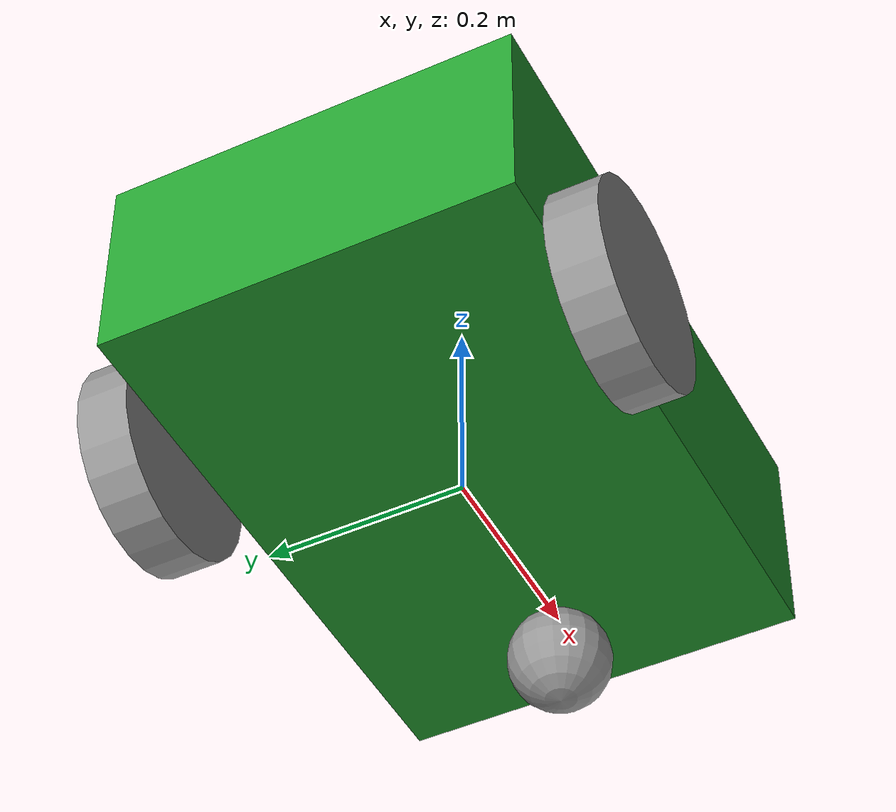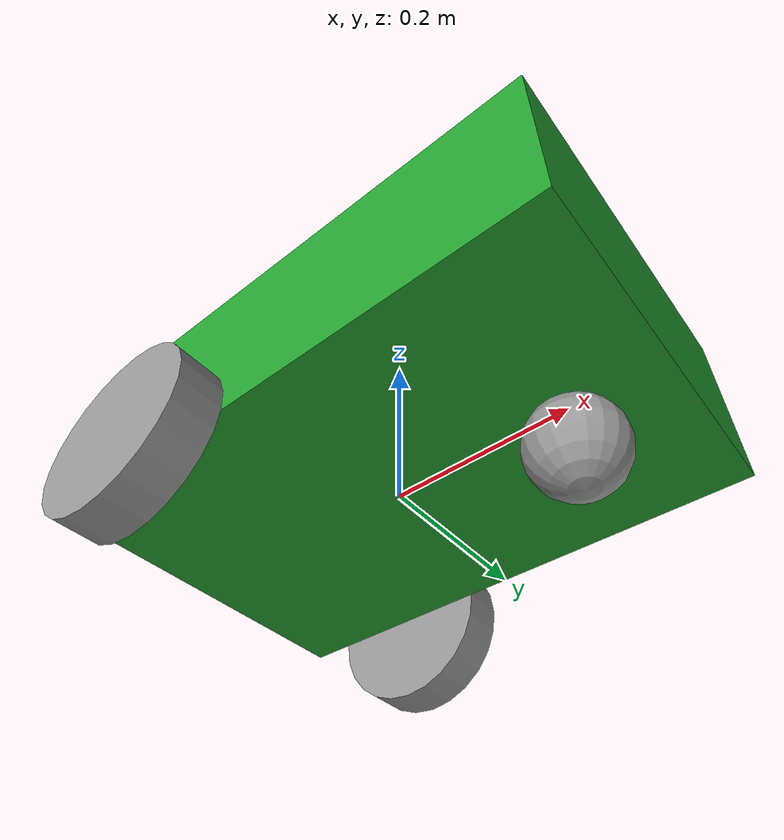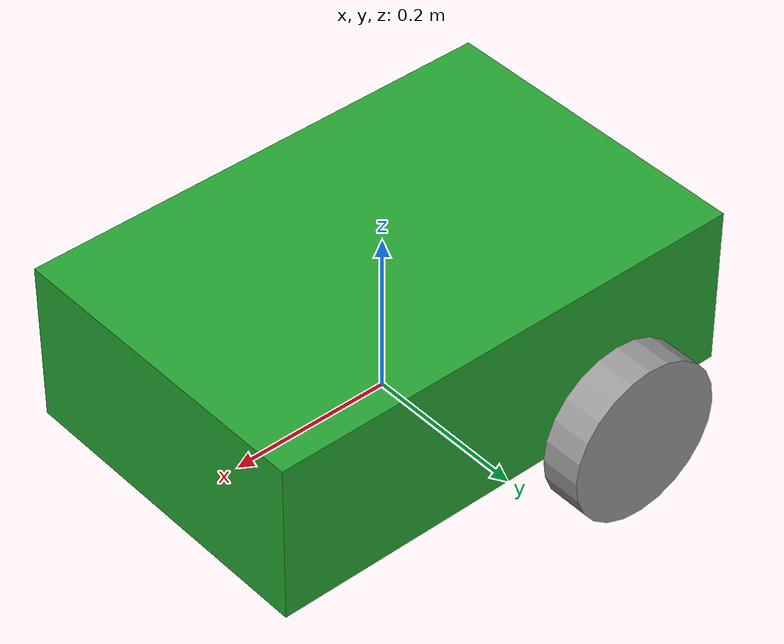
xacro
<?xml version="1.0"?>

<robot xmlns:xacro="http://www.ros.org/wiki/xacro">

    <xacro:property name="base_length" value="0.6" />
    <xacro:property name="base_width" value="0.4" />
    <xacro:property name="base_height" value="0.2" />
    <xacro:property name="wheel_radius" value="0.1" />
    <xacro:property name="wheel_length" value="0.05" />

    <xacro:macro name="wheel_links" params="prefix">
        <link name="${prefix}_wheel">
            <visual>
                <geometry>
                    <cylinder radius="${wheel_radius}" length="${wheel_length}"/>
                </geometry>
                <origin xyz="0 0 0" rpy ="${-pi/2.0} 0 0"/>
                <material name="grey"/>
            </visual>
            <collision>
                <geometry>
                    <sphere radius="${wheel_radius}"/>
                </geometry>
                <origin xyz="0 0 0" rpy="0 0 0"/>
            </collision>
            <xacro:cylinder-inertia m="1.0" r="${wheel_radius}" h="${wheel_length}" o_xyz="0 0 0" o_rpy="${-pi/2.0} 0 0" />
        </link>
    </xacro:macro>

    <link name="base_link">
        <visual>
            <geometry>
                <box size="${base_length} ${base_width} ${base_height}"/>
            </geometry>
            <origin xyz="0 0 0.1" rpy="0 0 0"/>
            <material name="green"/>
        </visual>
        <collision>
            <geometry>
                <box size="${base_length} ${base_width} ${base_height}"/>
            </geometry>
            <origin xyz="0 0 0.1" rpy="0 0 0"/>
        </collision>
         <xacro:box-inertia m="5.0" x="${base_length}" y="${base_width}" z="${base_height}"
                              o_xyz = "0 0 0.1" o_rpy="0 0 0" />
    </link>

    <xacro:wheel_links prefix="right"/>
    <xacro:wheel_links prefix="left"/>

    <link name="caster_wheel">
        <visual>
            <geometry>
                <sphere radius="${wheel_radius / 2}"/>
            </geometry>
            <origin xyz="0 0 0" rpy="0 0 0"/>
            <material name="grey"/>
        </visual>
        <collision>
            <geometry>
                <sphere radius="${wheel_radius / 2}"/>
            </geometry>
            <origin xyz="0 0 0" rpy="0 0 0"/>
        </collision>
        <xacro:sphere-inertia m="0.5" r="${wheel_radius/2}" o_xyz="0 0 0" o_rpy="0 0 0" />
    </link>

    <link name="base footprint"/>

    <!-- joints! -->

    <joint name="base_with_rightWheel" type="continuous">
        <parent link="base_link"/>
        <child link="right_wheel"/>
        <origin xyz="${-base_length/4.0} ${-base_width/1.77} 0.0" rpy="0.0 0.0 0.0"/>
        <axis xyz="0.0 1 0.0"/>
    </joint>

    <joint name="base_with_leftWheel" type="continuous">
        <parent link="base_link"/>
        <child link="left_wheel"/>
        <origin xyz="${-base_length/4.0} ${base_width/1.77} 0.0" rpy="0.0 0.0 0.0"/>
        <axis xyz="0.0 1 0.0"/>
    </joint>

    <joint name="base_with_caster" type="fixed">
        <parent link="base_link"/>
        <child link="caster_wheel"/>
        <origin xyz="${base_length /3.0} 0.0 ${-base_height / 4.0}" rpy="0.0 0.0 0.0"/>
    </joint>

    <joint name="base_joint" type="fixed">
        <parent link="base_link"/>
        <child link="base footprint"/>
        <origin xyz="0.0 0.0 ${base_height / 4.0}" rpy="0.0 0.0 0.0"/>
    </joint>

</robot>
